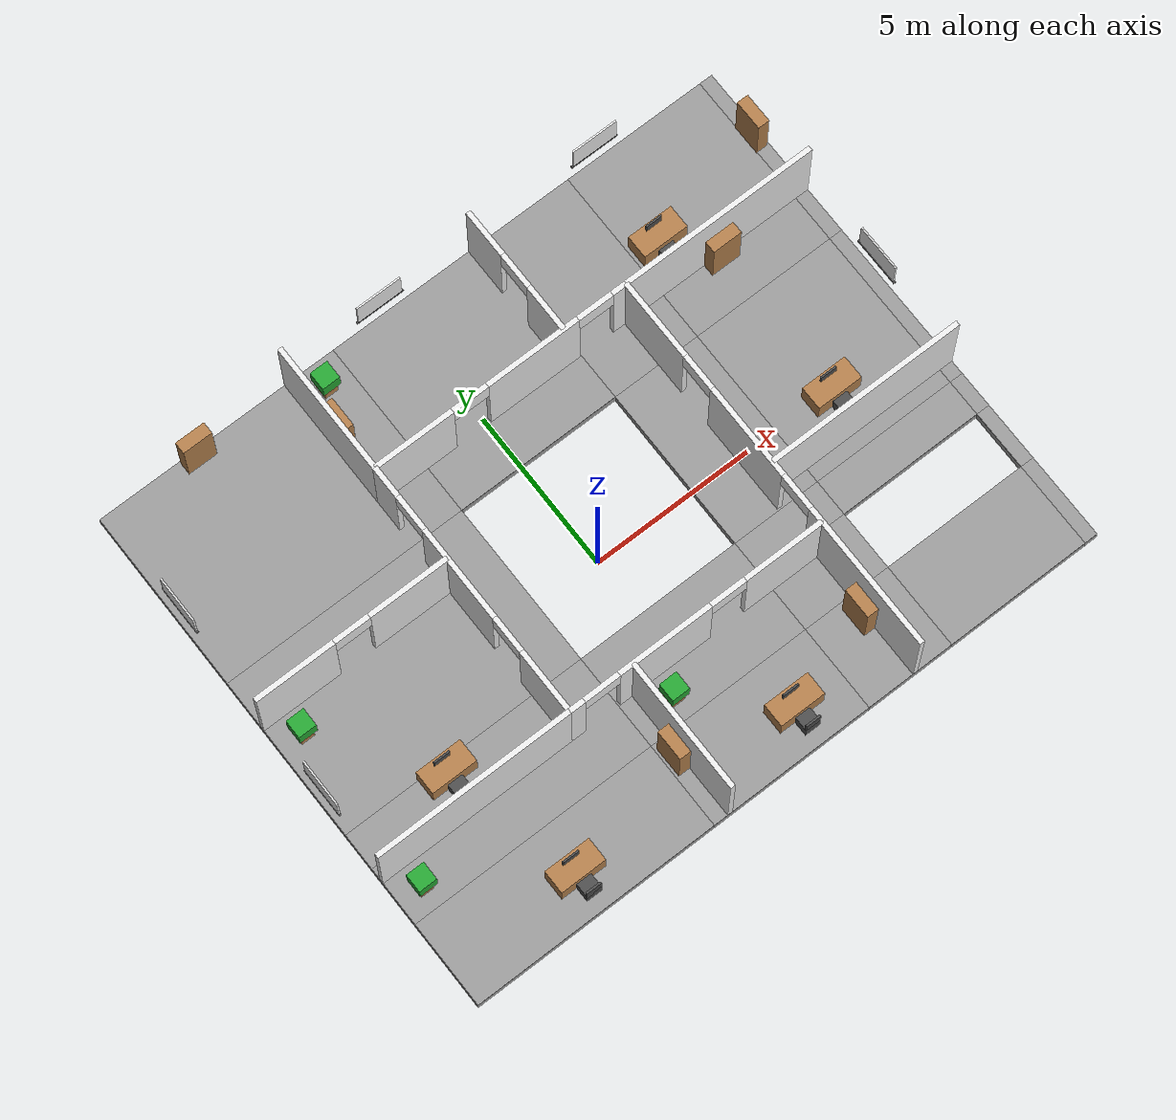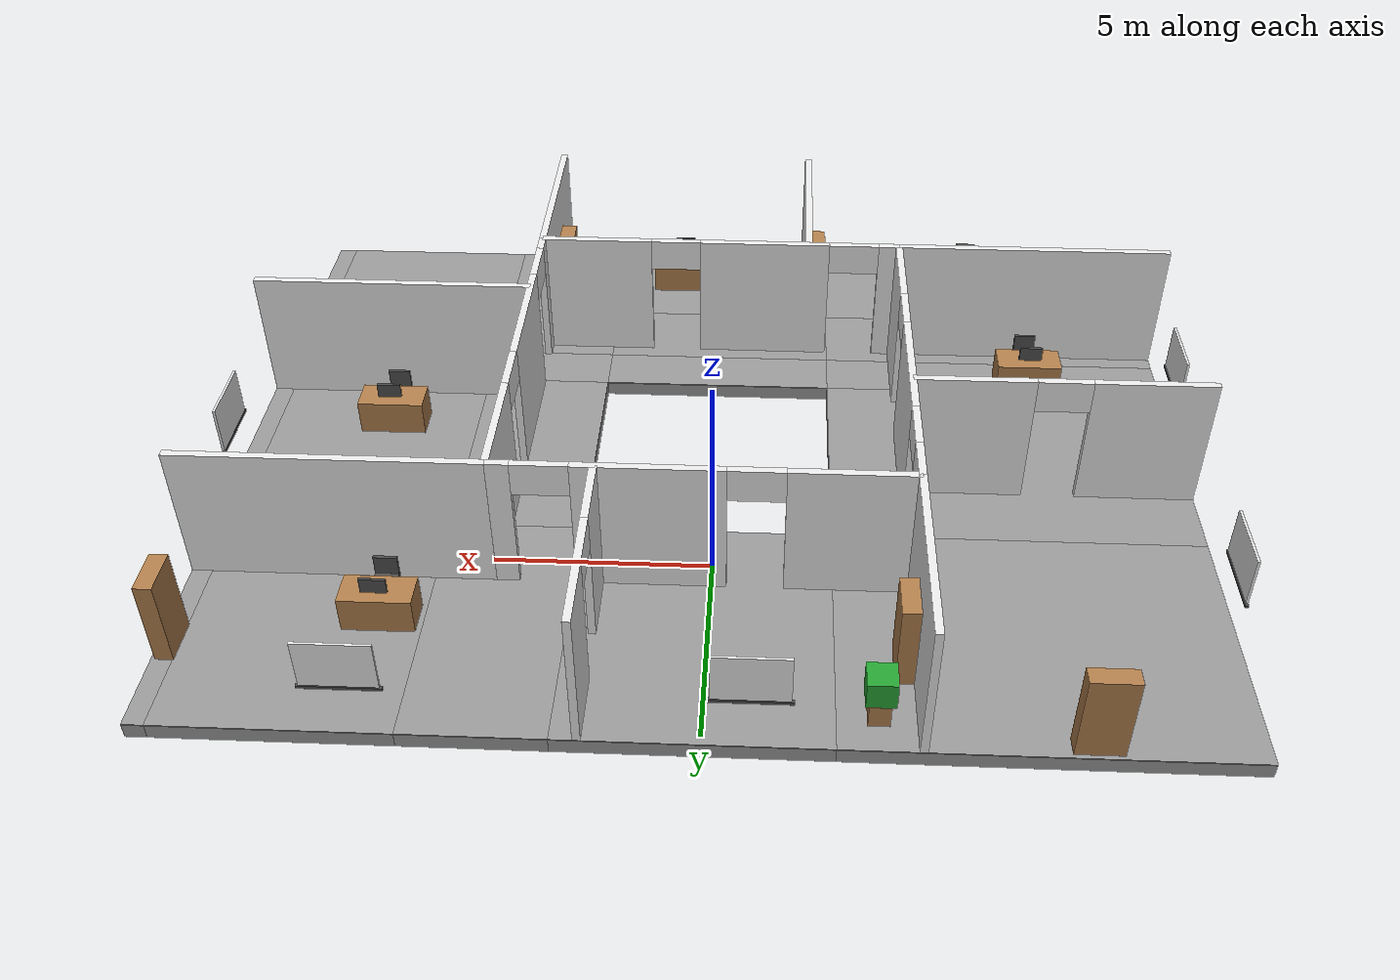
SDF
<sdf version="1.7">
 <world name="default">
  <model name="building_L2">
   <static>1</static>
   <link name="floor1_0">
    <pose>-6.25 -6.7 3.15 0 0 0</pose>
    <collision name="c"><geometry><box><size>7.5 2.6 0.3</size></box></geometry></collision>
    <visual name="v">
     <geometry><box><size>7.5 2.6 0.3</size></box></geometry>
     <material>
      <script><uri>file://media/materials/scripts/Gazebo.material</uri><name>Gazebo/Grey</name></script>
     </material>
    </visual>
   </link>
   <link name="floor1c_0">
    <pose>-6.25 -6.7 3.31 0 0 0</pose>
    <collision name="c"><geometry><box><size>7.5 2.6 0.02</size></box></geometry></collision>
    <visual name="v">
     <geometry><box><size>7.5 2.6 0.02</size></box></geometry>
     <material>
      <script><uri>file://media/materials/scripts/Gazebo.material</uri><name>Gazebo/Grey</name></script>
     </material>
    </visual>
   </link>
   <link name="floor1_1">
    <pose>-6.25 -4.5 3.15 0 0 0</pose>
    <collision name="c"><geometry><box><size>7.5 1.8 0.3</size></box></geometry></collision>
    <visual name="v">
     <geometry><box><size>7.5 1.8 0.3</size></box></geometry>
     <material>
      <script><uri>file://media/materials/scripts/Gazebo.material</uri><name>Gazebo/Grey</name></script>
     </material>
    </visual>
   </link>
   <link name="floor1c_1">
    <pose>-6.25 -4.5 3.31 0 0 0</pose>
    <collision name="c"><geometry><box><size>7.5 1.8 0.02</size></box></geometry></collision>
    <visual name="v">
     <geometry><box><size>7.5 1.8 0.02</size></box></geometry>
     <material>
      <script><uri>file://media/materials/scripts/Gazebo.material</uri><name>Gazebo/Grey</name></script>
     </material>
    </visual>
   </link>
   <link name="floor1_2">
    <pose>-6.25 -3.05 3.15 0 0 0</pose>
    <collision name="c"><geometry><box><size>7.5 1.1 0.3</size></box></geometry></collision>
    <visual name="v">
     <geometry><box><size>7.5 1.1 0.3</size></box></geometry>
     <material>
      <script><uri>file://media/materials/scripts/Gazebo.material</uri><name>Gazebo/Grey</name></script>
     </material>
    </visual>
   </link>
   <link name="floor1c_2">
    <pose>-6.25 -3.05 3.31 0 0 0</pose>
    <collision name="c"><geometry><box><size>7.5 1.1 0.02</size></box></geometry></collision>
    <visual name="v">
     <geometry><box><size>7.5 1.1 0.02</size></box></geometry>
     <material>
      <script><uri>file://media/materials/scripts/Gazebo.material</uri><name>Gazebo/Grey</name></script>
     </material>
    </visual>
   </link>
   <link name="floor1_3">
    <pose>-6.25 0 3.15 0 0 0</pose>
    <collision name="c"><geometry><box><size>7.5 5 0.3</size></box></geometry></collision>
    <visual name="v">
     <geometry><box><size>7.5 5 0.3</size></box></geometry>
     <material>
      <script><uri>file://media/materials/scripts/Gazebo.material</uri><name>Gazebo/Grey</name></script>
     </material>
    </visual>
   </link>
   <link name="floor1c_3">
    <pose>-6.25 0 3.31 0 0 0</pose>
    <collision name="c"><geometry><box><size>7.5 5 0.02</size></box></geometry></collision>
    <visual name="v">
     <geometry><box><size>7.5 5 0.02</size></box></geometry>
     <material>
      <script><uri>file://media/materials/scripts/Gazebo.material</uri><name>Gazebo/Grey</name></script>
     </material>
    </visual>
   </link>
   <link name="floor1_4">
    <pose>-6.25 5.25 3.15 0 0 0</pose>
    <collision name="c"><geometry><box><size>7.5 5.5 0.3</size></box></geometry></collision>
    <visual name="v">
     <geometry><box><size>7.5 5.5 0.3</size></box></geometry>
     <material>
      <script><uri>file://media/materials/scripts/Gazebo.material</uri><name>Gazebo/Grey</name></script>
     </material>
    </visual>
   </link>
   <link name="floor1c_4">
    <pose>-6.25 5.25 3.31 0 0 0</pose>
    <collision name="c"><geometry><box><size>7.5 5.5 0.02</size></box></geometry></collision>
    <visual name="v">
     <geometry><box><size>7.5 5.5 0.02</size></box></geometry>
     <material>
      <script><uri>file://media/materials/scripts/Gazebo.material</uri><name>Gazebo/Grey</name></script>
     </material>
    </visual>
   </link>
   <link name="floor1_5">
    <pose>0 -6.7 3.15 0 0 0</pose>
    <collision name="c"><geometry><box><size>5 2.6 0.3</size></box></geometry></collision>
    <visual name="v">
     <geometry><box><size>5 2.6 0.3</size></box></geometry>
     <material>
      <script><uri>file://media/materials/scripts/Gazebo.material</uri><name>Gazebo/Grey</name></script>
     </material>
    </visual>
   </link>
   <link name="floor1c_5">
    <pose>0 -6.7 3.31 0 0 0</pose>
    <collision name="c"><geometry><box><size>5 2.6 0.02</size></box></geometry></collision>
    <visual name="v">
     <geometry><box><size>5 2.6 0.02</size></box></geometry>
     <material>
      <script><uri>file://media/materials/scripts/Gazebo.material</uri><name>Gazebo/Grey</name></script>
     </material>
    </visual>
   </link>
   <link name="floor1_6">
    <pose>0 -4.5 3.15 0 0 0</pose>
    <collision name="c"><geometry><box><size>5 1.8 0.3</size></box></geometry></collision>
    <visual name="v">
     <geometry><box><size>5 1.8 0.3</size></box></geometry>
     <material>
      <script><uri>file://media/materials/scripts/Gazebo.material</uri><name>Gazebo/Grey</name></script>
     </material>
    </visual>
   </link>
   <link name="floor1c_6">
    <pose>0 -4.5 3.31 0 0 0</pose>
    <collision name="c"><geometry><box><size>5 1.8 0.02</size></box></geometry></collision>
    <visual name="v">
     <geometry><box><size>5 1.8 0.02</size></box></geometry>
     <material>
      <script><uri>file://media/materials/scripts/Gazebo.material</uri><name>Gazebo/Grey</name></script>
     </material>
    </visual>
   </link>
   <link name="floor1_7">
    <pose>0 -3.05 3.15 0 0 0</pose>
    <collision name="c"><geometry><box><size>5 1.1 0.3</size></box></geometry></collision>
    <visual name="v">
     <geometry><box><size>5 1.1 0.3</size></box></geometry>
     <material>
      <script><uri>file://media/materials/scripts/Gazebo.material</uri><name>Gazebo/Grey</name></script>
     </material>
    </visual>
   </link>
   <link name="floor1c_7">
    <pose>0 -3.05 3.31 0 0 0</pose>
    <collision name="c"><geometry><box><size>5 1.1 0.02</size></box></geometry></collision>
    <visual name="v">
     <geometry><box><size>5 1.1 0.02</size></box></geometry>
     <material>
      <script><uri>file://media/materials/scripts/Gazebo.material</uri><name>Gazebo/Grey</name></script>
     </material>
    </visual>
   </link>
   <link name="floor1_8">
    <pose>0 5.25 3.15 0 0 0</pose>
    <collision name="c"><geometry><box><size>5 5.5 0.3</size></box></geometry></collision>
    <visual name="v">
     <geometry><box><size>5 5.5 0.3</size></box></geometry>
     <material>
      <script><uri>file://media/materials/scripts/Gazebo.material</uri><name>Gazebo/Grey</name></script>
     </material>
    </visual>
   </link>
   <link name="floor1c_8">
    <pose>0 5.25 3.31 0 0 0</pose>
    <collision name="c"><geometry><box><size>5 5.5 0.02</size></box></geometry></collision>
    <visual name="v">
     <geometry><box><size>5 5.5 0.02</size></box></geometry>
     <material>
      <script><uri>file://media/materials/scripts/Gazebo.material</uri><name>Gazebo/Grey</name></script>
     </material>
    </visual>
   </link>
   <link name="floor1_9">
    <pose>3.85 -6.7 3.15 0 0 0</pose>
    <collision name="c"><geometry><box><size>2.7 2.6 0.3</size></box></geometry></collision>
    <visual name="v">
     <geometry><box><size>2.7 2.6 0.3</size></box></geometry>
     <material>
      <script><uri>file://media/materials/scripts/Gazebo.material</uri><name>Gazebo/Grey</name></script>
     </material>
    </visual>
   </link>
   <link name="floor1c_9">
    <pose>3.85 -6.7 3.31 0 0 0</pose>
    <collision name="c"><geometry><box><size>2.7 2.6 0.02</size></box></geometry></collision>
    <visual name="v">
     <geometry><box><size>2.7 2.6 0.02</size></box></geometry>
     <material>
      <script><uri>file://media/materials/scripts/Gazebo.material</uri><name>Gazebo/Grey</name></script>
     </material>
    </visual>
   </link>
   <link name="floor1_10">
    <pose>3.85 -4.5 3.15 0 0 0</pose>
    <collision name="c"><geometry><box><size>2.7 1.8 0.3</size></box></geometry></collision>
    <visual name="v">
     <geometry><box><size>2.7 1.8 0.3</size></box></geometry>
     <material>
      <script><uri>file://media/materials/scripts/Gazebo.material</uri><name>Gazebo/Grey</name></script>
     </material>
    </visual>
   </link>
   <link name="floor1c_10">
    <pose>3.85 -4.5 3.31 0 0 0</pose>
    <collision name="c"><geometry><box><size>2.7 1.8 0.02</size></box></geometry></collision>
    <visual name="v">
     <geometry><box><size>2.7 1.8 0.02</size></box></geometry>
     <material>
      <script><uri>file://media/materials/scripts/Gazebo.material</uri><name>Gazebo/Grey</name></script>
     </material>
    </visual>
   </link>
   <link name="floor1_11">
    <pose>3.85 -3.05 3.15 0 0 0</pose>
    <collision name="c"><geometry><box><size>2.7 1.1 0.3</size></box></geometry></collision>
    <visual name="v">
     <geometry><box><size>2.7 1.1 0.3</size></box></geometry>
     <material>
      <script><uri>file://media/materials/scripts/Gazebo.material</uri><name>Gazebo/Grey</name></script>
     </material>
    </visual>
   </link>
   <link name="floor1c_11">
    <pose>3.85 -3.05 3.31 0 0 0</pose>
    <collision name="c"><geometry><box><size>2.7 1.1 0.02</size></box></geometry></collision>
    <visual name="v">
     <geometry><box><size>2.7 1.1 0.02</size></box></geometry>
     <material>
      <script><uri>file://media/materials/scripts/Gazebo.material</uri><name>Gazebo/Grey</name></script>
     </material>
    </visual>
   </link>
   <link name="floor1_12">
    <pose>3.85 0 3.15 0 0 0</pose>
    <collision name="c"><geometry><box><size>2.7 5 0.3</size></box></geometry></collision>
    <visual name="v">
     <geometry><box><size>2.7 5 0.3</size></box></geometry>
     <material>
      <script><uri>file://media/materials/scripts/Gazebo.material</uri><name>Gazebo/Grey</name></script>
     </material>
    </visual>
   </link>
   <link name="floor1c_12">
    <pose>3.85 0 3.31 0 0 0</pose>
    <collision name="c"><geometry><box><size>2.7 5 0.02</size></box></geometry></collision>
    <visual name="v">
     <geometry><box><size>2.7 5 0.02</size></box></geometry>
     <material>
      <script><uri>file://media/materials/scripts/Gazebo.material</uri><name>Gazebo/Grey</name></script>
     </material>
    </visual>
   </link>
   <link name="floor1_13">
    <pose>3.85 5.25 3.15 0 0 0</pose>
    <collision name="c"><geometry><box><size>2.7 5.5 0.3</size></box></geometry></collision>
    <visual name="v">
     <geometry><box><size>2.7 5.5 0.3</size></box></geometry>
     <material>
      <script><uri>file://media/materials/scripts/Gazebo.material</uri><name>Gazebo/Grey</name></script>
     </material>
    </visual>
   </link>
   <link name="floor1c_13">
    <pose>3.85 5.25 3.31 0 0 0</pose>
    <collision name="c"><geometry><box><size>2.7 5.5 0.02</size></box></geometry></collision>
    <visual name="v">
     <geometry><box><size>2.7 5.5 0.02</size></box></geometry>
     <material>
      <script><uri>file://media/materials/scripts/Gazebo.material</uri><name>Gazebo/Grey</name></script>
     </material>
    </visual>
   </link>
   <link name="floor1_14">
    <pose>7.4 -6.7 3.15 0 0 0</pose>
    <collision name="c"><geometry><box><size>4.4 2.6 0.3</size></box></geometry></collision>
    <visual name="v">
     <geometry><box><size>4.4 2.6 0.3</size></box></geometry>
     <material>
      <script><uri>file://media/materials/scripts/Gazebo.material</uri><name>Gazebo/Grey</name></script>
     </material>
    </visual>
   </link>
   <link name="floor1c_14">
    <pose>7.4 -6.7 3.31 0 0 0</pose>
    <collision name="c"><geometry><box><size>4.4 2.6 0.02</size></box></geometry></collision>
    <visual name="v">
     <geometry><box><size>4.4 2.6 0.02</size></box></geometry>
     <material>
      <script><uri>file://media/materials/scripts/Gazebo.material</uri><name>Gazebo/Grey</name></script>
     </material>
    </visual>
   </link>
   <link name="floor1_15">
    <pose>7.4 -3.05 3.15 0 0 0</pose>
    <collision name="c"><geometry><box><size>4.4 1.1 0.3</size></box></geometry></collision>
    <visual name="v">
     <geometry><box><size>4.4 1.1 0.3</size></box></geometry>
     <material>
      <script><uri>file://media/materials/scripts/Gazebo.material</uri><name>Gazebo/Grey</name></script>
     </material>
    </visual>
   </link>
   <link name="floor1c_15">
    <pose>7.4 -3.05 3.31 0 0 0</pose>
    <collision name="c"><geometry><box><size>4.4 1.1 0.02</size></box></geometry></collision>
    <visual name="v">
     <geometry><box><size>4.4 1.1 0.02</size></box></geometry>
     <material>
      <script><uri>file://media/materials/scripts/Gazebo.material</uri><name>Gazebo/Grey</name></script>
     </material>
    </visual>
   </link>
   <link name="floor1_16">
    <pose>7.4 0 3.15 0 0 0</pose>
    <collision name="c"><geometry><box><size>4.4 5 0.3</size></box></geometry></collision>
    <visual name="v">
     <geometry><box><size>4.4 5 0.3</size></box></geometry>
     <material>
      <script><uri>file://media/materials/scripts/Gazebo.material</uri><name>Gazebo/Grey</name></script>
     </material>
    </visual>
   </link>
   <link name="floor1c_16">
    <pose>7.4 0 3.31 0 0 0</pose>
    <collision name="c"><geometry><box><size>4.4 5 0.02</size></box></geometry></collision>
    <visual name="v">
     <geometry><box><size>4.4 5 0.02</size></box></geometry>
     <material>
      <script><uri>file://media/materials/scripts/Gazebo.material</uri><name>Gazebo/Grey</name></script>
     </material>
    </visual>
   </link>
   <link name="floor1_17">
    <pose>7.4 5.25 3.15 0 0 0</pose>
    <collision name="c"><geometry><box><size>4.4 5.5 0.3</size></box></geometry></collision>
    <visual name="v">
     <geometry><box><size>4.4 5.5 0.3</size></box></geometry>
     <material>
      <script><uri>file://media/materials/scripts/Gazebo.material</uri><name>Gazebo/Grey</name></script>
     </material>
    </visual>
   </link>
   <link name="floor1c_17">
    <pose>7.4 5.25 3.31 0 0 0</pose>
    <collision name="c"><geometry><box><size>4.4 5.5 0.02</size></box></geometry></collision>
    <visual name="v">
     <geometry><box><size>4.4 5.5 0.02</size></box></geometry>
     <material>
      <script><uri>file://media/materials/scripts/Gazebo.material</uri><name>Gazebo/Grey</name></script>
     </material>
    </visual>
   </link>
   <link name="floor1_18">
    <pose>9.8 -6.7 3.15 0 0 0</pose>
    <collision name="c"><geometry><box><size>0.4 2.6 0.3</size></box></geometry></collision>
    <visual name="v">
     <geometry><box><size>0.4 2.6 0.3</size></box></geometry>
     <material>
      <script><uri>file://media/materials/scripts/Gazebo.material</uri><name>Gazebo/Grey</name></script>
     </material>
    </visual>
   </link>
   <link name="floor1c_18">
    <pose>9.8 -6.7 3.31 0 0 0</pose>
    <collision name="c"><geometry><box><size>0.4 2.6 0.02</size></box></geometry></collision>
    <visual name="v">
     <geometry><box><size>0.4 2.6 0.02</size></box></geometry>
     <material>
      <script><uri>file://media/materials/scripts/Gazebo.material</uri><name>Gazebo/Grey</name></script>
     </material>
    </visual>
   </link>
   <link name="floor1_19">
    <pose>9.8 -4.5 3.15 0 0 0</pose>
    <collision name="c"><geometry><box><size>0.4 1.8 0.3</size></box></geometry></collision>
    <visual name="v">
     <geometry><box><size>0.4 1.8 0.3</size></box></geometry>
     <material>
      <script><uri>file://media/materials/scripts/Gazebo.material</uri><name>Gazebo/Grey</name></script>
     </material>
    </visual>
   </link>
   <link name="floor1c_19">
    <pose>9.8 -4.5 3.31 0 0 0</pose>
    <collision name="c"><geometry><box><size>0.4 1.8 0.02</size></box></geometry></collision>
    <visual name="v">
     <geometry><box><size>0.4 1.8 0.02</size></box></geometry>
     <material>
      <script><uri>file://media/materials/scripts/Gazebo.material</uri><name>Gazebo/Grey</name></script>
     </material>
    </visual>
   </link>
   <link name="floor1_20">
    <pose>9.8 -3.05 3.15 0 0 0</pose>
    <collision name="c"><geometry><box><size>0.4 1.1 0.3</size></box></geometry></collision>
    <visual name="v">
     <geometry><box><size>0.4 1.1 0.3</size></box></geometry>
     <material>
      <script><uri>file://media/materials/scripts/Gazebo.material</uri><name>Gazebo/Grey</name></script>
     </material>
    </visual>
   </link>
   <link name="floor1c_20">
    <pose>9.8 -3.05 3.31 0 0 0</pose>
    <collision name="c"><geometry><box><size>0.4 1.1 0.02</size></box></geometry></collision>
    <visual name="v">
     <geometry><box><size>0.4 1.1 0.02</size></box></geometry>
     <material>
      <script><uri>file://media/materials/scripts/Gazebo.material</uri><name>Gazebo/Grey</name></script>
     </material>
    </visual>
   </link>
   <link name="floor1_21">
    <pose>9.8 0 3.15 0 0 0</pose>
    <collision name="c"><geometry><box><size>0.4 5 0.3</size></box></geometry></collision>
    <visual name="v">
     <geometry><box><size>0.4 5 0.3</size></box></geometry>
     <material>
      <script><uri>file://media/materials/scripts/Gazebo.material</uri><name>Gazebo/Grey</name></script>
     </material>
    </visual>
   </link>
   <link name="floor1c_21">
    <pose>9.8 0 3.31 0 0 0</pose>
    <collision name="c"><geometry><box><size>0.4 5 0.02</size></box></geometry></collision>
    <visual name="v">
     <geometry><box><size>0.4 5 0.02</size></box></geometry>
     <material>
      <script><uri>file://media/materials/scripts/Gazebo.material</uri><name>Gazebo/Grey</name></script>
     </material>
    </visual>
   </link>
   <link name="floor1_22">
    <pose>9.8 5.25 3.15 0 0 0</pose>
    <collision name="c"><geometry><box><size>0.4 5.5 0.3</size></box></geometry></collision>
    <visual name="v">
     <geometry><box><size>0.4 5.5 0.3</size></box></geometry>
     <material>
      <script><uri>file://media/materials/scripts/Gazebo.material</uri><name>Gazebo/Grey</name></script>
     </material>
    </visual>
   </link>
   <link name="floor1c_22">
    <pose>9.8 5.25 3.31 0 0 0</pose>
    <collision name="c"><geometry><box><size>0.4 5.5 0.02</size></box></geometry></collision>
    <visual name="v">
     <geometry><box><size>0.4 5.5 0.02</size></box></geometry>
     <material>
      <script><uri>file://media/materials/scripts/Gazebo.material</uri><name>Gazebo/Grey</name></script>
     </material>
    </visual>
   </link>
   <link name="w1_0_0">
    <pose>-2.775 4 4.75 0 0 0</pose>
    <collision name="c"><geometry><box><size>2.45 0.15 2.9</size></box></geometry></collision>
    <visual name="v">
     <geometry><box><size>2.45 0.15 2.9</size></box></geometry>
     <material>
      <script><uri>file://media/materials/scripts/Gazebo.material</uri><name>Gazebo/White</name></script>
     </material>
    </visual>
   </link>
   <link name="w1_0_1">
    <pose>1 4 4.75 0 0 0</pose>
    <collision name="c"><geometry><box><size>2.9 0.15 2.9</size></box></geometry></collision>
    <visual name="v">
     <geometry><box><size>2.9 0.15 2.9</size></box></geometry>
     <material>
      <script><uri>file://media/materials/scripts/Gazebo.material</uri><name>Gazebo/White</name></script>
     </material>
    </visual>
   </link>
   <link name="w1_0_2">
    <pose>3.775 4 4.75 0 0 0</pose>
    <collision name="c"><geometry><box><size>0.45 0.15 2.9</size></box></geometry></collision>
    <visual name="v">
     <geometry><box><size>0.45 0.15 2.9</size></box></geometry>
     <material>
      <script><uri>file://media/materials/scripts/Gazebo.material</uri><name>Gazebo/White</name></script>
     </material>
    </visual>
   </link>
   <link name="w1_0_L0">
    <pose>-1 4 5.85 0 0 0</pose>
    <collision name="c"><geometry><box><size>1.1 0.15 0.7</size></box></geometry></collision>
    <visual name="v">
     <geometry><box><size>1.1 0.15 0.7</size></box></geometry>
     <material>
      <script><uri>file://media/materials/scripts/Gazebo.material</uri><name>Gazebo/White</name></script>
     </material>
    </visual>
   </link>
   <link name="w1_0_L1">
    <pose>3 4 5.85 0 0 0</pose>
    <collision name="c"><geometry><box><size>1.1 0.15 0.7</size></box></geometry></collision>
    <visual name="v">
     <geometry><box><size>1.1 0.15 0.7</size></box></geometry>
     <material>
      <script><uri>file://media/materials/scripts/Gazebo.material</uri><name>Gazebo/White</name></script>
     </material>
    </visual>
   </link>
   <link name="w1_1_0">
    <pose>-3.775 -4 4.75 0 0 0</pose>
    <collision name="c"><geometry><box><size>0.45 0.15 2.9</size></box></geometry></collision>
    <visual name="v">
     <geometry><box><size>0.45 0.15 2.9</size></box></geometry>
     <material>
      <script><uri>file://media/materials/scripts/Gazebo.material</uri><name>Gazebo/White</name></script>
     </material>
    </visual>
   </link>
   <link name="w1_1_1">
    <pose>-1 -4 4.75 0 0 0</pose>
    <collision name="c"><geometry><box><size>2.9 0.15 2.9</size></box></geometry></collision>
    <visual name="v">
     <geometry><box><size>2.9 0.15 2.9</size></box></geometry>
     <material>
      <script><uri>file://media/materials/scripts/Gazebo.material</uri><name>Gazebo/White</name></script>
     </material>
    </visual>
   </link>
   <link name="w1_1_2">
    <pose>2.775 -4 4.75 0 0 0</pose>
    <collision name="c"><geometry><box><size>2.45 0.15 2.9</size></box></geometry></collision>
    <visual name="v">
     <geometry><box><size>2.45 0.15 2.9</size></box></geometry>
     <material>
      <script><uri>file://media/materials/scripts/Gazebo.material</uri><name>Gazebo/White</name></script>
     </material>
    </visual>
   </link>
   <link name="w1_1_L0">
    <pose>-3 -4 5.85 0 0 0</pose>
    <collision name="c"><geometry><box><size>1.1 0.15 0.7</size></box></geometry></collision>
    <visual name="v">
     <geometry><box><size>1.1 0.15 0.7</size></box></geometry>
     <material>
      <script><uri>file://media/materials/scripts/Gazebo.material</uri><name>Gazebo/White</name></script>
     </material>
    </visual>
   </link>
   <link name="w1_1_L1">
    <pose>1 -4 5.85 0 0 0</pose>
    <collision name="c"><geometry><box><size>1.1 0.15 0.7</size></box></geometry></collision>
    <visual name="v">
     <geometry><box><size>1.1 0.15 0.7</size></box></geometry>
     <material>
      <script><uri>file://media/materials/scripts/Gazebo.material</uri><name>Gazebo/White</name></script>
     </material>
    </visual>
   </link>
   <link name="w1_2_0">
    <pose>-4 -3.025 4.75 0 0 0</pose>
    <collision name="c"><geometry><box><size>0.15 1.95 2.9</size></box></geometry></collision>
    <visual name="v">
     <geometry><box><size>0.15 1.95 2.9</size></box></geometry>
     <material>
      <script><uri>file://media/materials/scripts/Gazebo.material</uri><name>Gazebo/White</name></script>
     </material>
    </visual>
   </link>
   <link name="w1_2_1">
    <pose>-4 0.5 4.75 0 0 0</pose>
    <collision name="c"><geometry><box><size>0.15 2.9 2.9</size></box></geometry></collision>
    <visual name="v">
     <geometry><box><size>0.15 2.9 2.9</size></box></geometry>
     <material>
      <script><uri>file://media/materials/scripts/Gazebo.material</uri><name>Gazebo/White</name></script>
     </material>
    </visual>
   </link>
   <link name="w1_2_2">
    <pose>-4 3.525 4.75 0 0 0</pose>
    <collision name="c"><geometry><box><size>0.15 0.95 2.9</size></box></geometry></collision>
    <visual name="v">
     <geometry><box><size>0.15 0.95 2.9</size></box></geometry>
     <material>
      <script><uri>file://media/materials/scripts/Gazebo.material</uri><name>Gazebo/White</name></script>
     </material>
    </visual>
   </link>
   <link name="w1_2_L0">
    <pose>-4 2.5 5.85 0 0 0</pose>
    <collision name="c"><geometry><box><size>0.15 1.1 0.7</size></box></geometry></collision>
    <visual name="v">
     <geometry><box><size>0.15 1.1 0.7</size></box></geometry>
     <material>
      <script><uri>file://media/materials/scripts/Gazebo.material</uri><name>Gazebo/White</name></script>
     </material>
    </visual>
   </link>
   <link name="w1_2_L1">
    <pose>-4 -1.5 5.85 0 0 0</pose>
    <collision name="c"><geometry><box><size>0.15 1.1 0.7</size></box></geometry></collision>
    <visual name="v">
     <geometry><box><size>0.15 1.1 0.7</size></box></geometry>
     <material>
      <script><uri>file://media/materials/scripts/Gazebo.material</uri><name>Gazebo/White</name></script>
     </material>
    </visual>
   </link>
   <link name="w1_3_0">
    <pose>4 -3.775 4.75 0 0 0</pose>
    <collision name="c"><geometry><box><size>0.15 0.45 2.9</size></box></geometry></collision>
    <visual name="v">
     <geometry><box><size>0.15 0.45 2.9</size></box></geometry>
     <material>
      <script><uri>file://media/materials/scripts/Gazebo.material</uri><name>Gazebo/White</name></script>
     </material>
    </visual>
   </link>
   <link name="w1_3_1">
    <pose>4 -1 4.75 0 0 0</pose>
    <collision name="c"><geometry><box><size>0.15 2.9 2.9</size></box></geometry></collision>
    <visual name="v">
     <geometry><box><size>0.15 2.9 2.9</size></box></geometry>
     <material>
      <script><uri>file://media/materials/scripts/Gazebo.material</uri><name>Gazebo/White</name></script>
     </material>
    </visual>
   </link>
   <link name="w1_3_2">
    <pose>4 2.775 4.75 0 0 0</pose>
    <collision name="c"><geometry><box><size>0.15 2.45 2.9</size></box></geometry></collision>
    <visual name="v">
     <geometry><box><size>0.15 2.45 2.9</size></box></geometry>
     <material>
      <script><uri>file://media/materials/scripts/Gazebo.material</uri><name>Gazebo/White</name></script>
     </material>
    </visual>
   </link>
   <link name="w1_3_L0">
    <pose>4 1 5.85 0 0 0</pose>
    <collision name="c"><geometry><box><size>0.15 1.1 0.7</size></box></geometry></collision>
    <visual name="v">
     <geometry><box><size>0.15 1.1 0.7</size></box></geometry>
     <material>
      <script><uri>file://media/materials/scripts/Gazebo.material</uri><name>Gazebo/White</name></script>
     </material>
    </visual>
   </link>
   <link name="w1_3_L1">
    <pose>4 -3 5.85 0 0 0</pose>
    <collision name="c"><geometry><box><size>0.15 1.1 0.7</size></box></geometry></collision>
    <visual name="v">
     <geometry><box><size>0.15 1.1 0.7</size></box></geometry>
     <material>
      <script><uri>file://media/materials/scripts/Gazebo.material</uri><name>Gazebo/White</name></script>
     </material>
    </visual>
   </link>
   <link name="w1_4_0">
    <pose>7 4 4.75 0 0 0</pose>
    <collision name="c"><geometry><box><size>6 0.15 2.9</size></box></geometry></collision>
    <visual name="v">
     <geometry><box><size>6 0.15 2.9</size></box></geometry>
     <material>
      <script><uri>file://media/materials/scripts/Gazebo.material</uri><name>Gazebo/White</name></script>
     </material>
    </visual>
   </link>
   <link name="w1_5_0">
    <pose>4 -6 4.75 0 0 0</pose>
    <collision name="c"><geometry><box><size>0.15 4 2.9</size></box></geometry></collision>
    <visual name="v">
     <geometry><box><size>0.15 4 2.9</size></box></geometry>
     <material>
      <script><uri>file://media/materials/scripts/Gazebo.material</uri><name>Gazebo/White</name></script>
     </material>
    </visual>
   </link>
   <link name="w1_6_0">
    <pose>-4 6 4.75 0 0 0</pose>
    <collision name="c"><geometry><box><size>0.15 4 2.9</size></box></geometry></collision>
    <visual name="v">
     <geometry><box><size>0.15 4 2.9</size></box></geometry>
     <material>
      <script><uri>file://media/materials/scripts/Gazebo.material</uri><name>Gazebo/White</name></script>
     </material>
    </visual>
   </link>
   <link name="w1_7_0">
    <pose>-7 -4 4.75 0 0 0</pose>
    <collision name="c"><geometry><box><size>6 0.15 2.9</size></box></geometry></collision>
    <visual name="v">
     <geometry><box><size>6 0.15 2.9</size></box></geometry>
     <material>
      <script><uri>file://media/materials/scripts/Gazebo.material</uri><name>Gazebo/White</name></script>
     </material>
    </visual>
   </link>
   <link name="w1_8_0">
    <pose>2 4.725 4.75 0 0 0</pose>
    <collision name="c"><geometry><box><size>0.15 1.45 2.9</size></box></geometry></collision>
    <visual name="v">
     <geometry><box><size>0.15 1.45 2.9</size></box></geometry>
     <material>
      <script><uri>file://media/materials/scripts/Gazebo.material</uri><name>Gazebo/White</name></script>
     </material>
    </visual>
   </link>
   <link name="w1_8_1">
    <pose>2 7.275 4.75 0 0 0</pose>
    <collision name="c"><geometry><box><size>0.15 1.45 2.9</size></box></geometry></collision>
    <visual name="v">
     <geometry><box><size>0.15 1.45 2.9</size></box></geometry>
     <material>
      <script><uri>file://media/materials/scripts/Gazebo.material</uri><name>Gazebo/White</name></script>
     </material>
    </visual>
   </link>
   <link name="w1_8_L0">
    <pose>2 6 5.85 0 0 0</pose>
    <collision name="c"><geometry><box><size>0.15 1.1 0.7</size></box></geometry></collision>
    <visual name="v">
     <geometry><box><size>0.15 1.1 0.7</size></box></geometry>
     <material>
      <script><uri>file://media/materials/scripts/Gazebo.material</uri><name>Gazebo/White</name></script>
     </material>
    </visual>
   </link>
   <link name="w1_9_0">
    <pose>-8.775 1 4.75 0 0 0</pose>
    <collision name="c"><geometry><box><size>2.45 0.15 2.9</size></box></geometry></collision>
    <visual name="v">
     <geometry><box><size>2.45 0.15 2.9</size></box></geometry>
     <material>
      <script><uri>file://media/materials/scripts/Gazebo.material</uri><name>Gazebo/White</name></script>
     </material>
    </visual>
   </link>
   <link name="w1_9_1">
    <pose>-5.225 1 4.75 0 0 0</pose>
    <collision name="c"><geometry><box><size>2.45 0.15 2.9</size></box></geometry></collision>
    <visual name="v">
     <geometry><box><size>2.45 0.15 2.9</size></box></geometry>
     <material>
      <script><uri>file://media/materials/scripts/Gazebo.material</uri><name>Gazebo/White</name></script>
     </material>
    </visual>
   </link>
   <link name="w1_9_L0">
    <pose>-7 1 5.85 0 0 0</pose>
    <collision name="c"><geometry><box><size>1.1 0.15 0.7</size></box></geometry></collision>
    <visual name="v">
     <geometry><box><size>1.1 0.15 0.7</size></box></geometry>
     <material>
      <script><uri>file://media/materials/scripts/Gazebo.material</uri><name>Gazebo/White</name></script>
     </material>
    </visual>
   </link>
   <link name="w1_10_0">
    <pose>-2 -6 4.75 0 0 0</pose>
    <collision name="c"><geometry><box><size>0.15 4 2.9</size></box></geometry></collision>
    <visual name="v">
     <geometry><box><size>0.15 4 2.9</size></box></geometry>
     <material>
      <script><uri>file://media/materials/scripts/Gazebo.material</uri><name>Gazebo/White</name></script>
     </material>
    </visual>
   </link>
   <link name="w1_11_0">
    <pose>7 -2 4.75 0 0 0</pose>
    <collision name="c"><geometry><box><size>6 0.15 2.9</size></box></geometry></collision>
    <visual name="v">
     <geometry><box><size>6 0.15 2.9</size></box></geometry>
     <material>
      <script><uri>file://media/materials/scripts/Gazebo.material</uri><name>Gazebo/White</name></script>
     </material>
    </visual>
   </link>
   <link name="f1_N1plp">
    <pose>-3.25 7.25 3.6 0 0 0</pose>
    <collision name="c"><geometry><box><size>0.4 0.4 0.6</size></box></geometry></collision>
    <visual name="v">
     <geometry><box><size>0.4 0.4 0.6</size></box></geometry>
     <material>
      <script><uri>file://media/materials/scripts/Gazebo.material</uri><name>Gazebo/Wood</name></script>
     </material>
    </visual>
   </link>
   <link name="f1_N1plg">
    <pose>-3.25 7.25 4.15 0 0 0</pose>
    <collision name="c"><geometry><box><size>0.55 0.55 0.55</size></box></geometry></collision>
    <visual name="v">
     <geometry><box><size>0.55 0.55 0.55</size></box></geometry>
     <material>
      <script><uri>file://media/materials/scripts/Gazebo.material</uri><name>Gazebo/Green</name></script>
     </material>
    </visual>
   </link>
   <link name="f1_N1bsf">
    <pose>-3.75 6 4.2 0 0 0</pose>
    <collision name="c"><geometry><box><size>0.35 0.9 1.8</size></box></geometry></collision>
    <visual name="v">
     <geometry><box><size>0.35 0.9 1.8</size></box></geometry>
     <material>
      <script><uri>file://media/materials/scripts/Gazebo.material</uri><name>Gazebo/Wood</name></script>
     </material>
    </visual>
   </link>
   <link name="f1_N1bsb0">
    <pose>-3.75 6 3.75 0 0 0</pose>
    <collision name="c"><geometry><box><size>0.28 0.8 0.32</size></box></geometry></collision>
    <visual name="v">
     <geometry><box><size>0.28 0.8 0.32</size></box></geometry>
     <material>
      <script><uri>file://media/materials/scripts/Gazebo.material</uri><name>Gazebo/Grey</name></script>
     </material>
    </visual>
   </link>
   <link name="f1_N1bsb1">
    <pose>-3.75 6 4.25 0 0 0</pose>
    <collision name="c"><geometry><box><size>0.28 0.8 0.32</size></box></geometry></collision>
    <visual name="v">
     <geometry><box><size>0.28 0.8 0.32</size></box></geometry>
     <material>
      <script><uri>file://media/materials/scripts/Gazebo.material</uri><name>Gazebo/Grey</name></script>
     </material>
    </visual>
   </link>
   <link name="f1_N1bsb2">
    <pose>-3.75 6 4.75 0 0 0</pose>
    <collision name="c"><geometry><box><size>0.28 0.8 0.32</size></box></geometry></collision>
    <visual name="v">
     <geometry><box><size>0.28 0.8 0.32</size></box></geometry>
     <material>
      <script><uri>file://media/materials/scripts/Gazebo.material</uri><name>Gazebo/Grey</name></script>
     </material>
    </visual>
   </link>
   <link name="f1_N1wbw">
    <pose>-1 7.895 4.9 0 0 0</pose>
    <collision name="c"><geometry><box><size>1.4 0.05 1</size></box></geometry></collision>
    <visual name="v">
     <geometry><box><size>1.4 0.05 1</size></box></geometry>
     <material>
      <script><uri>file://media/materials/scripts/Gazebo.material</uri><name>Gazebo/White</name></script>
     </material>
    </visual>
   </link>
   <link name="f1_N1wbf">
    <pose>-1 7.895 4.35 0 0 0</pose>
    <collision name="c"><geometry><box><size>1.5 0.06 0.06</size></box></geometry></collision>
    <visual name="v">
     <geometry><box><size>1.5 0.06 0.06</size></box></geometry>
     <material>
      <script><uri>file://media/materials/scripts/Gazebo.material</uri><name>Gazebo/DarkGrey</name></script>
     </material>
    </visual>
   </link>
   <link name="f1_N2dd">
    <pose>6 5.2 3.68 0 0 0</pose>
    <collision name="c"><geometry><box><size>1.4 0.7 0.76</size></box></geometry></collision>
    <visual name="v">
     <geometry><box><size>1.4 0.7 0.76</size></box></geometry>
     <material>
      <script><uri>file://media/materials/scripts/Gazebo.material</uri><name>Gazebo/Wood</name></script>
     </material>
    </visual>
   </link>
   <link name="f1_N2dm">
    <pose>6 5.38 4.32 0 0 0</pose>
    <collision name="c"><geometry><box><size>0.5 0.05 0.32</size></box></geometry></collision>
    <visual name="v">
     <geometry><box><size>0.5 0.05 0.32</size></box></geometry>
     <material>
      <script><uri>file://media/materials/scripts/Gazebo.material</uri><name>Gazebo/DarkGrey</name></script>
     </material>
    </visual>
   </link>
   <link name="f1_N2dcs">
    <pose>6 4.65 3.54 0 0 0</pose>
    <collision name="c"><geometry><box><size>0.46 0.46 0.48</size></box></geometry></collision>
    <visual name="v">
     <geometry><box><size>0.46 0.46 0.48</size></box></geometry>
     <material>
      <script><uri>file://media/materials/scripts/Gazebo.material</uri><name>Gazebo/DarkGrey</name></script>
     </material>
    </visual>
   </link>
   <link name="f1_N2dcb">
    <pose>6 4.45 3.9 0 0 0</pose>
    <collision name="c"><geometry><box><size>0.46 0.06 0.55</size></box></geometry></collision>
    <visual name="v">
     <geometry><box><size>0.46 0.06 0.55</size></box></geometry>
     <material>
      <script><uri>file://media/materials/scripts/Gazebo.material</uri><name>Gazebo/DarkGrey</name></script>
     </material>
    </visual>
   </link>
   <link name="f1_N2bsf">
    <pose>9.75 6 4.2 0 0 0</pose>
    <collision name="c"><geometry><box><size>0.35 0.9 1.8</size></box></geometry></collision>
    <visual name="v">
     <geometry><box><size>0.35 0.9 1.8</size></box></geometry>
     <material>
      <script><uri>file://media/materials/scripts/Gazebo.material</uri><name>Gazebo/Wood</name></script>
     </material>
    </visual>
   </link>
   <link name="f1_N2bsb0">
    <pose>9.75 6 3.75 0 0 0</pose>
    <collision name="c"><geometry><box><size>0.28 0.8 0.32</size></box></geometry></collision>
    <visual name="v">
     <geometry><box><size>0.28 0.8 0.32</size></box></geometry>
     <material>
      <script><uri>file://media/materials/scripts/Gazebo.material</uri><name>Gazebo/Grey</name></script>
     </material>
    </visual>
   </link>
   <link name="f1_N2bsb1">
    <pose>9.75 6 4.25 0 0 0</pose>
    <collision name="c"><geometry><box><size>0.28 0.8 0.32</size></box></geometry></collision>
    <visual name="v">
     <geometry><box><size>0.28 0.8 0.32</size></box></geometry>
     <material>
      <script><uri>file://media/materials/scripts/Gazebo.material</uri><name>Gazebo/Grey</name></script>
     </material>
    </visual>
   </link>
   <link name="f1_N2bsb2">
    <pose>9.75 6 4.75 0 0 0</pose>
    <collision name="c"><geometry><box><size>0.28 0.8 0.32</size></box></geometry></collision>
    <visual name="v">
     <geometry><box><size>0.28 0.8 0.32</size></box></geometry>
     <material>
      <script><uri>file://media/materials/scripts/Gazebo.material</uri><name>Gazebo/Grey</name></script>
     </material>
    </visual>
   </link>
   <link name="f1_N2wbw">
    <pose>6 7.895 4.9 0 0 0</pose>
    <collision name="c"><geometry><box><size>1.4 0.05 1</size></box></geometry></collision>
    <visual name="v">
     <geometry><box><size>1.4 0.05 1</size></box></geometry>
     <material>
      <script><uri>file://media/materials/scripts/Gazebo.material</uri><name>Gazebo/White</name></script>
     </material>
    </visual>
   </link>
   <link name="f1_N2wbf">
    <pose>6 7.895 4.35 0 0 0</pose>
    <collision name="c"><geometry><box><size>1.5 0.06 0.06</size></box></geometry></collision>
    <visual name="v">
     <geometry><box><size>1.5 0.06 0.06</size></box></geometry>
     <material>
      <script><uri>file://media/materials/scripts/Gazebo.material</uri><name>Gazebo/DarkGrey</name></script>
     </material>
    </visual>
   </link>
   <link name="f1_W1bsf">
    <pose>-7 7.75 4.2 0 0 0</pose>
    <collision name="c"><geometry><box><size>0.9 0.35 1.8</size></box></geometry></collision>
    <visual name="v">
     <geometry><box><size>0.9 0.35 1.8</size></box></geometry>
     <material>
      <script><uri>file://media/materials/scripts/Gazebo.material</uri><name>Gazebo/Wood</name></script>
     </material>
    </visual>
   </link>
   <link name="f1_W1bsb0">
    <pose>-7 7.75 3.75 0 0 0</pose>
    <collision name="c"><geometry><box><size>0.8 0.28 0.32</size></box></geometry></collision>
    <visual name="v">
     <geometry><box><size>0.8 0.28 0.32</size></box></geometry>
     <material>
      <script><uri>file://media/materials/scripts/Gazebo.material</uri><name>Gazebo/Grey</name></script>
     </material>
    </visual>
   </link>
   <link name="f1_W1bsb1">
    <pose>-7 7.75 4.25 0 0 0</pose>
    <collision name="c"><geometry><box><size>0.8 0.28 0.32</size></box></geometry></collision>
    <visual name="v">
     <geometry><box><size>0.8 0.28 0.32</size></box></geometry>
     <material>
      <script><uri>file://media/materials/scripts/Gazebo.material</uri><name>Gazebo/Grey</name></script>
     </material>
    </visual>
   </link>
   <link name="f1_W1bsb2">
    <pose>-7 7.75 4.75 0 0 0</pose>
    <collision name="c"><geometry><box><size>0.8 0.28 0.32</size></box></geometry></collision>
    <visual name="v">
     <geometry><box><size>0.8 0.28 0.32</size></box></geometry>
     <material>
      <script><uri>file://media/materials/scripts/Gazebo.material</uri><name>Gazebo/Grey</name></script>
     </material>
    </visual>
   </link>
   <link name="f1_W1wbw">
    <pose>-9.895 4.5 4.9 0 0 0</pose>
    <collision name="c"><geometry><box><size>0.05 1.4 1</size></box></geometry></collision>
    <visual name="v">
     <geometry><box><size>0.05 1.4 1</size></box></geometry>
     <material>
      <script><uri>file://media/materials/scripts/Gazebo.material</uri><name>Gazebo/White</name></script>
     </material>
    </visual>
   </link>
   <link name="f1_W1wbf">
    <pose>-9.895 4.5 4.35 0 0 0</pose>
    <collision name="c"><geometry><box><size>0.06 1.5 0.06</size></box></geometry></collision>
    <visual name="v">
     <geometry><box><size>0.06 1.5 0.06</size></box></geometry>
     <material>
      <script><uri>file://media/materials/scripts/Gazebo.material</uri><name>Gazebo/DarkGrey</name></script>
     </material>
    </visual>
   </link>
   <link name="f1_W2dd">
    <pose>-7 -2.8 3.68 0 0 0</pose>
    <collision name="c"><geometry><box><size>1.4 0.7 0.76</size></box></geometry></collision>
    <visual name="v">
     <geometry><box><size>1.4 0.7 0.76</size></box></geometry>
     <material>
      <script><uri>file://media/materials/scripts/Gazebo.material</uri><name>Gazebo/Wood</name></script>
     </material>
    </visual>
   </link>
   <link name="f1_W2dm">
    <pose>-7 -2.62 4.32 0 0 0</pose>
    <collision name="c"><geometry><box><size>0.5 0.05 0.32</size></box></geometry></collision>
    <visual name="v">
     <geometry><box><size>0.5 0.05 0.32</size></box></geometry>
     <material>
      <script><uri>file://media/materials/scripts/Gazebo.material</uri><name>Gazebo/DarkGrey</name></script>
     </material>
    </visual>
   </link>
   <link name="f1_W2dcs">
    <pose>-7 -3.35 3.54 0 0 0</pose>
    <collision name="c"><geometry><box><size>0.46 0.46 0.48</size></box></geometry></collision>
    <visual name="v">
     <geometry><box><size>0.46 0.46 0.48</size></box></geometry>
     <material>
      <script><uri>file://media/materials/scripts/Gazebo.material</uri><name>Gazebo/DarkGrey</name></script>
     </material>
    </visual>
   </link>
   <link name="f1_W2dcb">
    <pose>-7 -3.55 3.9 0 0 0</pose>
    <collision name="c"><geometry><box><size>0.46 0.06 0.55</size></box></geometry></collision>
    <visual name="v">
     <geometry><box><size>0.46 0.06 0.55</size></box></geometry>
     <material>
      <script><uri>file://media/materials/scripts/Gazebo.material</uri><name>Gazebo/DarkGrey</name></script>
     </material>
    </visual>
   </link>
   <link name="f1_W2plp">
    <pose>-9.25 0.25 3.6 0 0 0</pose>
    <collision name="c"><geometry><box><size>0.4 0.4 0.6</size></box></geometry></collision>
    <visual name="v">
     <geometry><box><size>0.4 0.4 0.6</size></box></geometry>
     <material>
      <script><uri>file://media/materials/scripts/Gazebo.material</uri><name>Gazebo/Wood</name></script>
     </material>
    </visual>
   </link>
   <link name="f1_W2plg">
    <pose>-9.25 0.25 4.15 0 0 0</pose>
    <collision name="c"><geometry><box><size>0.55 0.55 0.55</size></box></geometry></collision>
    <visual name="v">
     <geometry><box><size>0.55 0.55 0.55</size></box></geometry>
     <material>
      <script><uri>file://media/materials/scripts/Gazebo.material</uri><name>Gazebo/Green</name></script>
     </material>
    </visual>
   </link>
   <link name="f1_W2wbw">
    <pose>-9.895 -1.5 4.9 0 0 0</pose>
    <collision name="c"><geometry><box><size>0.05 1.4 1</size></box></geometry></collision>
    <visual name="v">
     <geometry><box><size>0.05 1.4 1</size></box></geometry>
     <material>
      <script><uri>file://media/materials/scripts/Gazebo.material</uri><name>Gazebo/White</name></script>
     </material>
    </visual>
   </link>
   <link name="f1_W2wbf">
    <pose>-9.895 -1.5 4.35 0 0 0</pose>
    <collision name="c"><geometry><box><size>0.06 1.5 0.06</size></box></geometry></collision>
    <visual name="v">
     <geometry><box><size>0.06 1.5 0.06</size></box></geometry>
     <material>
      <script><uri>file://media/materials/scripts/Gazebo.material</uri><name>Gazebo/DarkGrey</name></script>
     </material>
    </visual>
   </link>
   <link name="f1_S1dd">
    <pose>-6 -6.8 3.68 0 0 0</pose>
    <collision name="c"><geometry><box><size>1.4 0.7 0.76</size></box></geometry></collision>
    <visual name="v">
     <geometry><box><size>1.4 0.7 0.76</size></box></geometry>
     <material>
      <script><uri>file://media/materials/scripts/Gazebo.material</uri><name>Gazebo/Wood</name></script>
     </material>
    </visual>
   </link>
   <link name="f1_S1dm">
    <pose>-6 -6.62 4.32 0 0 0</pose>
    <collision name="c"><geometry><box><size>0.5 0.05 0.32</size></box></geometry></collision>
    <visual name="v">
     <geometry><box><size>0.5 0.05 0.32</size></box></geometry>
     <material>
      <script><uri>file://media/materials/scripts/Gazebo.material</uri><name>Gazebo/DarkGrey</name></script>
     </material>
    </visual>
   </link>
   <link name="f1_S1dcs">
    <pose>-6 -7.35 3.54 0 0 0</pose>
    <collision name="c"><geometry><box><size>0.46 0.46 0.48</size></box></geometry></collision>
    <visual name="v">
     <geometry><box><size>0.46 0.46 0.48</size></box></geometry>
     <material>
      <script><uri>file://media/materials/scripts/Gazebo.material</uri><name>Gazebo/DarkGrey</name></script>
     </material>
    </visual>
   </link>
   <link name="f1_S1dcb">
    <pose>-6 -7.55 3.9 0 0 0</pose>
    <collision name="c"><geometry><box><size>0.46 0.06 0.55</size></box></geometry></collision>
    <visual name="v">
     <geometry><box><size>0.46 0.06 0.55</size></box></geometry>
     <material>
      <script><uri>file://media/materials/scripts/Gazebo.material</uri><name>Gazebo/DarkGrey</name></script>
     </material>
    </visual>
   </link>
   <link name="f1_S1plp">
    <pose>-9.25 -4.75 3.6 0 0 0</pose>
    <collision name="c"><geometry><box><size>0.4 0.4 0.6</size></box></geometry></collision>
    <visual name="v">
     <geometry><box><size>0.4 0.4 0.6</size></box></geometry>
     <material>
      <script><uri>file://media/materials/scripts/Gazebo.material</uri><name>Gazebo/Wood</name></script>
     </material>
    </visual>
   </link>
   <link name="f1_S1plg">
    <pose>-9.25 -4.75 4.15 0 0 0</pose>
    <collision name="c"><geometry><box><size>0.55 0.55 0.55</size></box></geometry></collision>
    <visual name="v">
     <geometry><box><size>0.55 0.55 0.55</size></box></geometry>
     <material>
      <script><uri>file://media/materials/scripts/Gazebo.material</uri><name>Gazebo/Green</name></script>
     </material>
    </visual>
   </link>
   <link name="f1_S1bsf">
    <pose>-2.25 -6 4.2 0 0 0</pose>
    <collision name="c"><geometry><box><size>0.35 0.9 1.8</size></box></geometry></collision>
    <visual name="v">
     <geometry><box><size>0.35 0.9 1.8</size></box></geometry>
     <material>
      <script><uri>file://media/materials/scripts/Gazebo.material</uri><name>Gazebo/Wood</name></script>
     </material>
    </visual>
   </link>
   <link name="f1_S1bsb0">
    <pose>-2.25 -6 3.75 0 0 0</pose>
    <collision name="c"><geometry><box><size>0.28 0.8 0.32</size></box></geometry></collision>
    <visual name="v">
     <geometry><box><size>0.28 0.8 0.32</size></box></geometry>
     <material>
      <script><uri>file://media/materials/scripts/Gazebo.material</uri><name>Gazebo/Grey</name></script>
     </material>
    </visual>
   </link>
   <link name="f1_S1bsb1">
    <pose>-2.25 -6 4.25 0 0 0</pose>
    <collision name="c"><geometry><box><size>0.28 0.8 0.32</size></box></geometry></collision>
    <visual name="v">
     <geometry><box><size>0.28 0.8 0.32</size></box></geometry>
     <material>
      <script><uri>file://media/materials/scripts/Gazebo.material</uri><name>Gazebo/Grey</name></script>
     </material>
    </visual>
   </link>
   <link name="f1_S1bsb2">
    <pose>-2.25 -6 4.75 0 0 0</pose>
    <collision name="c"><geometry><box><size>0.28 0.8 0.32</size></box></geometry></collision>
    <visual name="v">
     <geometry><box><size>0.28 0.8 0.32</size></box></geometry>
     <material>
      <script><uri>file://media/materials/scripts/Gazebo.material</uri><name>Gazebo/Grey</name></script>
     </material>
    </visual>
   </link>
   <link name="f1_S2dd">
    <pose>1 -6.8 3.68 0 0 0</pose>
    <collision name="c"><geometry><box><size>1.4 0.7 0.76</size></box></geometry></collision>
    <visual name="v">
     <geometry><box><size>1.4 0.7 0.76</size></box></geometry>
     <material>
      <script><uri>file://media/materials/scripts/Gazebo.material</uri><name>Gazebo/Wood</name></script>
     </material>
    </visual>
   </link>
   <link name="f1_S2dm">
    <pose>1 -6.62 4.32 0 0 0</pose>
    <collision name="c"><geometry><box><size>0.5 0.05 0.32</size></box></geometry></collision>
    <visual name="v">
     <geometry><box><size>0.5 0.05 0.32</size></box></geometry>
     <material>
      <script><uri>file://media/materials/scripts/Gazebo.material</uri><name>Gazebo/DarkGrey</name></script>
     </material>
    </visual>
   </link>
   <link name="f1_S2dcs">
    <pose>1 -7.35 3.54 0 0 0</pose>
    <collision name="c"><geometry><box><size>0.46 0.46 0.48</size></box></geometry></collision>
    <visual name="v">
     <geometry><box><size>0.46 0.46 0.48</size></box></geometry>
     <material>
      <script><uri>file://media/materials/scripts/Gazebo.material</uri><name>Gazebo/DarkGrey</name></script>
     </material>
    </visual>
   </link>
   <link name="f1_S2dcb">
    <pose>1 -7.55 3.9 0 0 0</pose>
    <collision name="c"><geometry><box><size>0.46 0.06 0.55</size></box></geometry></collision>
    <visual name="v">
     <geometry><box><size>0.46 0.06 0.55</size></box></geometry>
     <material>
      <script><uri>file://media/materials/scripts/Gazebo.material</uri><name>Gazebo/DarkGrey</name></script>
     </material>
    </visual>
   </link>
   <link name="f1_S2plp">
    <pose>-1.25 -4.75 3.6 0 0 0</pose>
    <collision name="c"><geometry><box><size>0.4 0.4 0.6</size></box></geometry></collision>
    <visual name="v">
     <geometry><box><size>0.4 0.4 0.6</size></box></geometry>
     <material>
      <script><uri>file://media/materials/scripts/Gazebo.material</uri><name>Gazebo/Wood</name></script>
     </material>
    </visual>
   </link>
   <link name="f1_S2plg">
    <pose>-1.25 -4.75 4.15 0 0 0</pose>
    <collision name="c"><geometry><box><size>0.55 0.55 0.55</size></box></geometry></collision>
    <visual name="v">
     <geometry><box><size>0.55 0.55 0.55</size></box></geometry>
     <material>
      <script><uri>file://media/materials/scripts/Gazebo.material</uri><name>Gazebo/Green</name></script>
     </material>
    </visual>
   </link>
   <link name="f1_S2bsf">
    <pose>3.75 -6 4.2 0 0 0</pose>
    <collision name="c"><geometry><box><size>0.35 0.9 1.8</size></box></geometry></collision>
    <visual name="v">
     <geometry><box><size>0.35 0.9 1.8</size></box></geometry>
     <material>
      <script><uri>file://media/materials/scripts/Gazebo.material</uri><name>Gazebo/Wood</name></script>
     </material>
    </visual>
   </link>
   <link name="f1_S2bsb0">
    <pose>3.75 -6 3.75 0 0 0</pose>
    <collision name="c"><geometry><box><size>0.28 0.8 0.32</size></box></geometry></collision>
    <visual name="v">
     <geometry><box><size>0.28 0.8 0.32</size></box></geometry>
     <material>
      <script><uri>file://media/materials/scripts/Gazebo.material</uri><name>Gazebo/Grey</name></script>
     </material>
    </visual>
   </link>
   <link name="f1_S2bsb1">
    <pose>3.75 -6 4.25 0 0 0</pose>
    <collision name="c"><geometry><box><size>0.28 0.8 0.32</size></box></geometry></collision>
    <visual name="v">
     <geometry><box><size>0.28 0.8 0.32</size></box></geometry>
     <material>
      <script><uri>file://media/materials/scripts/Gazebo.material</uri><name>Gazebo/Grey</name></script>
     </material>
    </visual>
   </link>
   <link name="f1_S2bsb2">
    <pose>3.75 -6 4.75 0 0 0</pose>
    <collision name="c"><geometry><box><size>0.28 0.8 0.32</size></box></geometry></collision>
    <visual name="v">
     <geometry><box><size>0.28 0.8 0.32</size></box></geometry>
     <material>
      <script><uri>file://media/materials/scripts/Gazebo.material</uri><name>Gazebo/Grey</name></script>
     </material>
    </visual>
   </link>
   <link name="f1_E1dd">
    <pose>7 -0.8 3.68 0 0 0</pose>
    <collision name="c"><geometry><box><size>1.4 0.7 0.76</size></box></geometry></collision>
    <visual name="v">
     <geometry><box><size>1.4 0.7 0.76</size></box></geometry>
     <material>
      <script><uri>file://media/materials/scripts/Gazebo.material</uri><name>Gazebo/Wood</name></script>
     </material>
    </visual>
   </link>
   <link name="f1_E1dm">
    <pose>7 -0.62 4.32 0 0 0</pose>
    <collision name="c"><geometry><box><size>0.5 0.05 0.32</size></box></geometry></collision>
    <visual name="v">
     <geometry><box><size>0.5 0.05 0.32</size></box></geometry>
     <material>
      <script><uri>file://media/materials/scripts/Gazebo.material</uri><name>Gazebo/DarkGrey</name></script>
     </material>
    </visual>
   </link>
   <link name="f1_E1dcs">
    <pose>7 -1.35 3.54 0 0 0</pose>
    <collision name="c"><geometry><box><size>0.46 0.46 0.48</size></box></geometry></collision>
    <visual name="v">
     <geometry><box><size>0.46 0.46 0.48</size></box></geometry>
     <material>
      <script><uri>file://media/materials/scripts/Gazebo.material</uri><name>Gazebo/DarkGrey</name></script>
     </material>
    </visual>
   </link>
   <link name="f1_E1dcb">
    <pose>7 -1.55 3.9 0 0 0</pose>
    <collision name="c"><geometry><box><size>0.46 0.06 0.55</size></box></geometry></collision>
    <visual name="v">
     <geometry><box><size>0.46 0.06 0.55</size></box></geometry>
     <material>
      <script><uri>file://media/materials/scripts/Gazebo.material</uri><name>Gazebo/DarkGrey</name></script>
     </material>
    </visual>
   </link>
   <link name="f1_E1bsf">
    <pose>7 3.75 4.2 0 0 0</pose>
    <collision name="c"><geometry><box><size>0.9 0.35 1.8</size></box></geometry></collision>
    <visual name="v">
     <geometry><box><size>0.9 0.35 1.8</size></box></geometry>
     <material>
      <script><uri>file://media/materials/scripts/Gazebo.material</uri><name>Gazebo/Wood</name></script>
     </material>
    </visual>
   </link>
   <link name="f1_E1bsb0">
    <pose>7 3.75 3.75 0 0 0</pose>
    <collision name="c"><geometry><box><size>0.8 0.28 0.32</size></box></geometry></collision>
    <visual name="v">
     <geometry><box><size>0.8 0.28 0.32</size></box></geometry>
     <material>
      <script><uri>file://media/materials/scripts/Gazebo.material</uri><name>Gazebo/Grey</name></script>
     </material>
    </visual>
   </link>
   <link name="f1_E1bsb1">
    <pose>7 3.75 4.25 0 0 0</pose>
    <collision name="c"><geometry><box><size>0.8 0.28 0.32</size></box></geometry></collision>
    <visual name="v">
     <geometry><box><size>0.8 0.28 0.32</size></box></geometry>
     <material>
      <script><uri>file://media/materials/scripts/Gazebo.material</uri><name>Gazebo/Grey</name></script>
     </material>
    </visual>
   </link>
   <link name="f1_E1bsb2">
    <pose>7 3.75 4.75 0 0 0</pose>
    <collision name="c"><geometry><box><size>0.8 0.28 0.32</size></box></geometry></collision>
    <visual name="v">
     <geometry><box><size>0.8 0.28 0.32</size></box></geometry>
     <material>
      <script><uri>file://media/materials/scripts/Gazebo.material</uri><name>Gazebo/Grey</name></script>
     </material>
    </visual>
   </link>
   <link name="f1_E1wbw">
    <pose>9.895 1 4.9 0 0 0</pose>
    <collision name="c"><geometry><box><size>0.05 1.4 1</size></box></geometry></collision>
    <visual name="v">
     <geometry><box><size>0.05 1.4 1</size></box></geometry>
     <material>
      <script><uri>file://media/materials/scripts/Gazebo.material</uri><name>Gazebo/White</name></script>
     </material>
    </visual>
   </link>
   <link name="f1_E1wbf">
    <pose>9.895 1 4.35 0 0 0</pose>
    <collision name="c"><geometry><box><size>0.06 1.5 0.06</size></box></geometry></collision>
    <visual name="v">
     <geometry><box><size>0.06 1.5 0.06</size></box></geometry>
     <material>
      <script><uri>file://media/materials/scripts/Gazebo.material</uri><name>Gazebo/DarkGrey</name></script>
     </material>
    </visual>
   </link>
  </model>
 </world>
</sdf>
